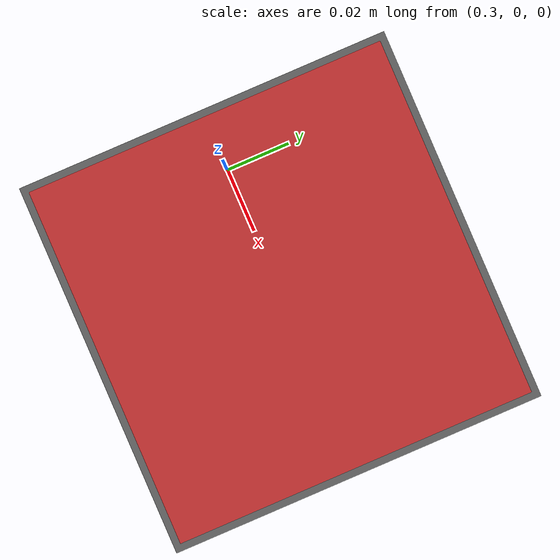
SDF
<?xml version="1.0" ?>
<sdf version="1.9">
  <world name="empty_world">

    <!-- ================= PHYSICS ================= -->
    <physics type="bullet">
      <max_step_size>0.001</max_step_size>
      <real_time_factor>1.0</real_time_factor>
      <real_time_update_rate>1000</real_time_update_rate>
    </physics>

    <!-- ================= SUN LIGHT ================= -->
    <light name="sun" type="directional">
      <pose>0 0 10 0 0 0</pose>
      <cast_shadows>true</cast_shadows>

      <diffuse>0.8 0.8 0.8 1</diffuse>
      <specular>0.2 0.2 0.2 1</specular>

      <direction>-0.5 0.5 -1</direction>

      <attenuation>
        <range>1000</range>
        <constant>0.9</constant>
        <linear>0.01</linear>
        <quadratic>0.001</quadratic>
      </attenuation>
    </light>

    <!-- ================= GROUND PLANE ================= -->
    <model name="ground_plane">
      <static>true</static>

      <link name="link">
        <collision name="collision">
          <geometry>
            <plane>
              <normal>0 0 1</normal>
              <size>100 100</size>
            </plane>
          </geometry>
        </collision>

        <visual name="visual">
          <geometry>
            <plane>
              <normal>0 0 1</normal>
              <size>100 100</size>
            </plane>
          </geometry>

          <material>
            <ambient>0.3 0.3 0.3 1</ambient>
            <diffuse>0.4 0.4 0.4 1</diffuse>
            <specular>0.1 0.1 0.1 1</specular>
          </material>
        </visual>
      </link>
    </model>

    <model name="cube">
      <pose>0.34 0 0.04 0 0 0</pose>
      <static>false</static>

      <link name="cube_link">

        <!-- Inertial -->
        <inertial>
          <mass>0.2</mass>
          <inertia>
            <ixx>0.000085</ixx>
            <iyy>0.000085</iyy>
            <izz>0.000085</izz>
            <ixy>0</ixy>
            <ixz>0</ixz>
            <iyz>0</iyz>
          </inertia>
        </inertial>

        <!-- Collision -->
        <collision name="collision">
          <geometry>
            <box>
              <size>0.08 0.08 0.08</size>
            </box>
          </geometry>

          <surface>
            <friction>
              <ode>
                <mu>1.0</mu>
                <mu2>1.0</mu2>
              </ode>
            </friction>
          </surface>
        </collision>

        <!-- Visual -->
        <visual name="visual">
          <geometry>
            <box>
              <size>0.08 0.08 0.08</size>
            </box>
          </geometry>
          <material>
            <ambient>0.8 0.2 0.2 1</ambient>
            <diffuse>0.8 0.2 0.2 1</diffuse>
          </material>
        </visual>

      </link>
    </model>

    <!-- ================= SCENE ================= -->
    <scene>
      <ambient>0.4 0.4 0.4 1</ambient>
      <background>0.7 0.8 0.9 1</background>
      <shadows>true</shadows>
    </scene>

  </world>
</sdf>
